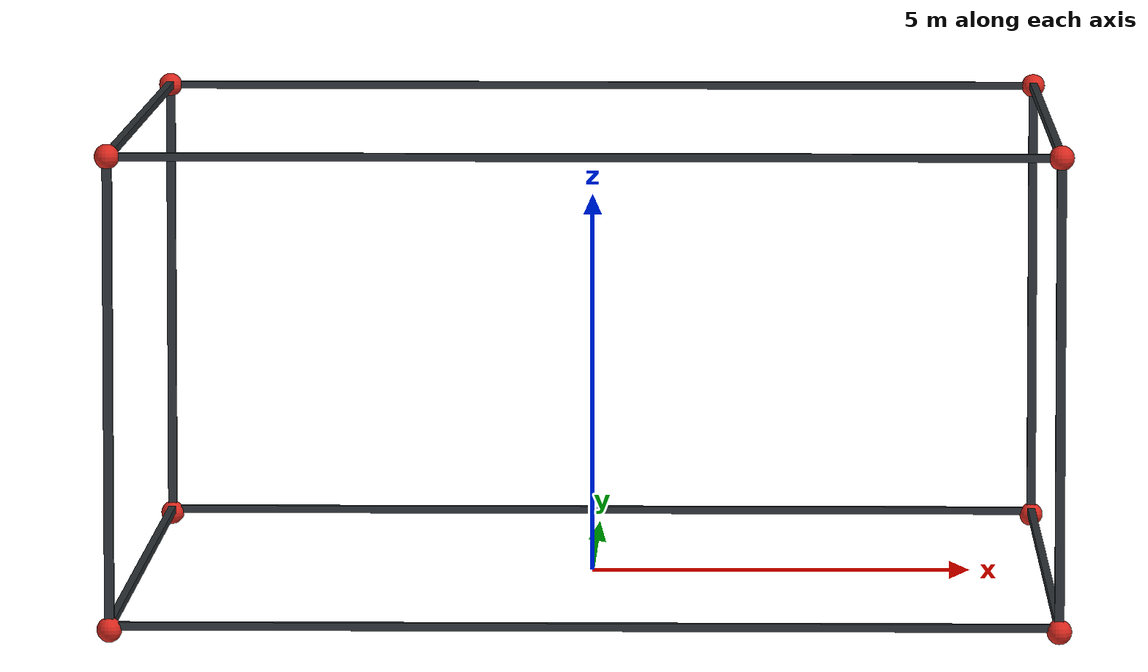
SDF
<?xml version="1.0" ?>
<sdf version="1.6">
  <model name="cdpr_frame">
    <static>true</static>
    <link name="frame">
      <!-- Bottom square -->
      <visual name="beam_bottom_x_neg"><pose>0 -6 0.05 0 0 0</pose><geometry><box><size>12.0 0.10 0.10</size></box></geometry><material><ambient>0.18 0.20 0.22 1</ambient><diffuse>0.18 0.20 0.22 1</diffuse></material></visual>
      <visual name="beam_bottom_x_pos"><pose>0  6 0.05 0 0 0</pose><geometry><box><size>12.0 0.10 0.10</size></box></geometry><material><ambient>0.18 0.20 0.22 1</ambient><diffuse>0.18 0.20 0.22 1</diffuse></material></visual>
      <visual name="beam_bottom_y_neg"><pose>-6 0 0.05 0 0 0</pose><geometry><box><size>0.10 12.0 0.10</size></box></geometry><material><ambient>0.18 0.20 0.22 1</ambient><diffuse>0.18 0.20 0.22 1</diffuse></material></visual>
      <visual name="beam_bottom_y_pos"><pose> 6 0 0.05 0 0 0</pose><geometry><box><size>0.10 12.0 0.10</size></box></geometry><material><ambient>0.18 0.20 0.22 1</ambient><diffuse>0.18 0.20 0.22 1</diffuse></material></visual>

      <!-- Top square -->
      <visual name="beam_top_x_neg"><pose>0 -6 6.0 0 0 0</pose><geometry><box><size>12.0 0.10 0.10</size></box></geometry><material><ambient>0.18 0.20 0.22 1</ambient><diffuse>0.18 0.20 0.22 1</diffuse></material></visual>
      <visual name="beam_top_x_pos"><pose>0  6 6.0 0 0 0</pose><geometry><box><size>12.0 0.10 0.10</size></box></geometry><material><ambient>0.18 0.20 0.22 1</ambient><diffuse>0.18 0.20 0.22 1</diffuse></material></visual>
      <visual name="beam_top_y_neg"><pose>-6 0 6.0 0 0 0</pose><geometry><box><size>0.10 12.0 0.10</size></box></geometry><material><ambient>0.18 0.20 0.22 1</ambient><diffuse>0.18 0.20 0.22 1</diffuse></material></visual>
      <visual name="beam_top_y_pos"><pose> 6 0 6.0 0 0 0</pose><geometry><box><size>0.10 12.0 0.10</size></box></geometry><material><ambient>0.18 0.20 0.22 1</ambient><diffuse>0.18 0.20 0.22 1</diffuse></material></visual>

      <!-- Columns -->
      <visual name="column_0"><pose>-6 -6 3 0 0 0</pose><geometry><box><size>0.12 0.12 6.0</size></box></geometry><material><ambient>0.18 0.20 0.22 1</ambient><diffuse>0.18 0.20 0.22 1</diffuse></material></visual>
      <visual name="column_1"><pose> 6 -6 3 0 0 0</pose><geometry><box><size>0.12 0.12 6.0</size></box></geometry><material><ambient>0.18 0.20 0.22 1</ambient><diffuse>0.18 0.20 0.22 1</diffuse></material></visual>
      <visual name="column_2"><pose> 6  6 3 0 0 0</pose><geometry><box><size>0.12 0.12 6.0</size></box></geometry><material><ambient>0.18 0.20 0.22 1</ambient><diffuse>0.18 0.20 0.22 1</diffuse></material></visual>
      <visual name="column_3"><pose>-6  6 3 0 0 0</pose><geometry><box><size>0.12 0.12 6.0</size></box></geometry><material><ambient>0.18 0.20 0.22 1</ambient><diffuse>0.18 0.20 0.22 1</diffuse></material></visual>

      <!-- Anchor markers -->
      <visual name="anchor_0"><pose>-6 -6 6 0 0 0</pose><geometry><sphere><radius>0.16</radius></sphere></geometry><material><ambient>0.86 0.16 0.12 1</ambient><diffuse>0.86 0.16 0.12 1</diffuse></material></visual>
      <visual name="anchor_1"><pose> 6 -6 6 0 0 0</pose><geometry><sphere><radius>0.16</radius></sphere></geometry><material><ambient>0.86 0.16 0.12 1</ambient><diffuse>0.86 0.16 0.12 1</diffuse></material></visual>
      <visual name="anchor_2"><pose> 6  6 6 0 0 0</pose><geometry><sphere><radius>0.16</radius></sphere></geometry><material><ambient>0.86 0.16 0.12 1</ambient><diffuse>0.86 0.16 0.12 1</diffuse></material></visual>
      <visual name="anchor_3"><pose>-6  6 6 0 0 0</pose><geometry><sphere><radius>0.16</radius></sphere></geometry><material><ambient>0.86 0.16 0.12 1</ambient><diffuse>0.86 0.16 0.12 1</diffuse></material></visual>
      <visual name="anchor_4"><pose>-6 -6 0 0 0 0</pose><geometry><sphere><radius>0.16</radius></sphere></geometry><material><ambient>0.86 0.16 0.12 1</ambient><diffuse>0.86 0.16 0.12 1</diffuse></material></visual>
      <visual name="anchor_5"><pose> 6 -6 0 0 0 0</pose><geometry><sphere><radius>0.16</radius></sphere></geometry><material><ambient>0.86 0.16 0.12 1</ambient><diffuse>0.86 0.16 0.12 1</diffuse></material></visual>
      <visual name="anchor_6"><pose> 6  6 0 0 0 0</pose><geometry><sphere><radius>0.16</radius></sphere></geometry><material><ambient>0.86 0.16 0.12 1</ambient><diffuse>0.86 0.16 0.12 1</diffuse></material></visual>
      <visual name="anchor_7"><pose>-6  6 0 0 0 0</pose><geometry><sphere><radius>0.16</radius></sphere></geometry><material><ambient>0.86 0.16 0.12 1</ambient><diffuse>0.86 0.16 0.12 1</diffuse></material></visual>
    </link>
  </model>
</sdf>
